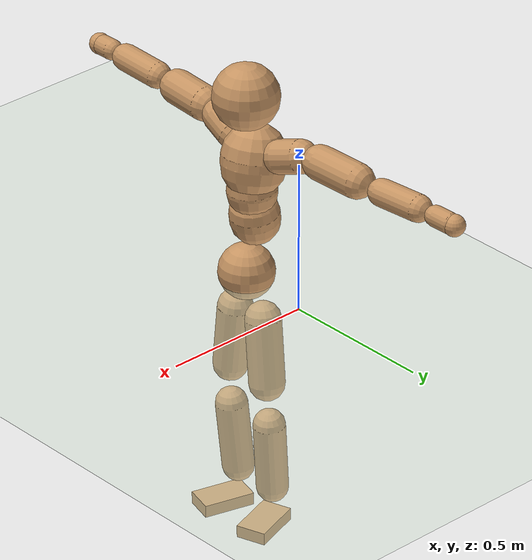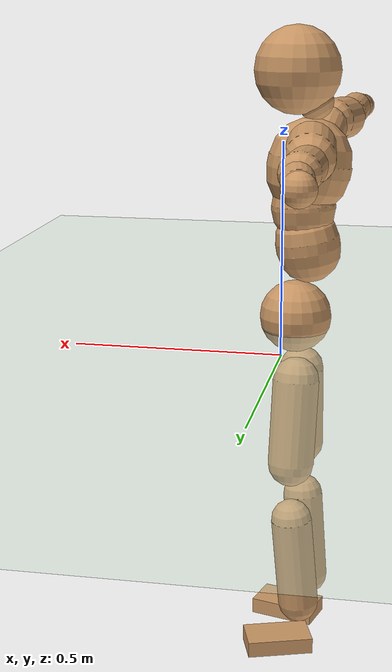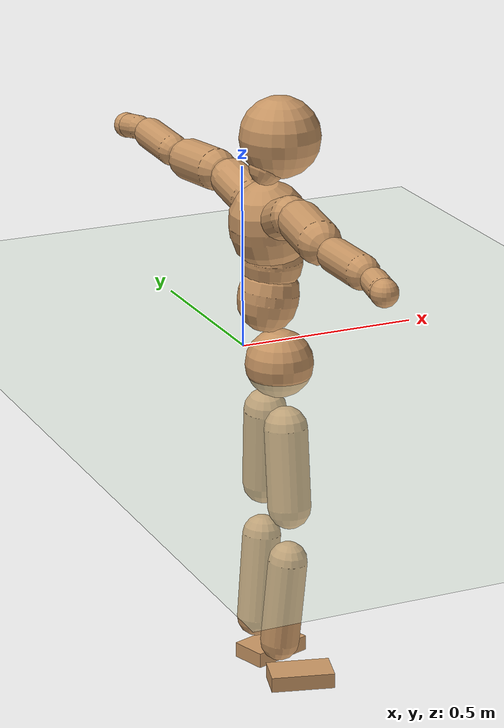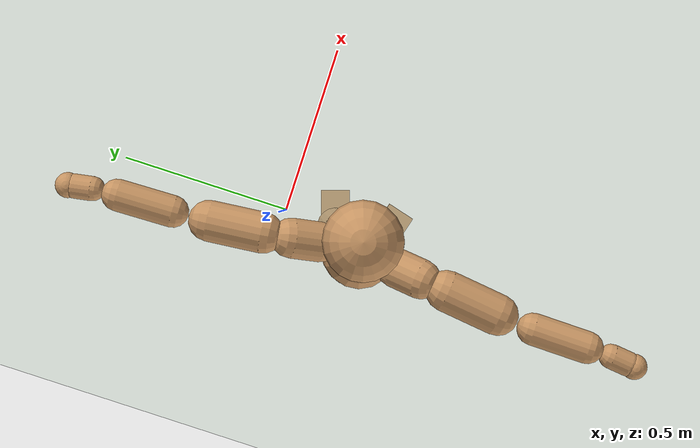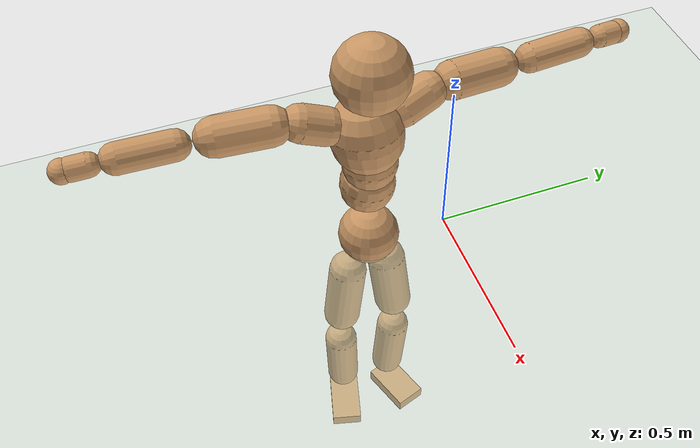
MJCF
<mujoco model="humanoid">
  <compiler coordinate="local"/>
  <default>
    <joint damping="0.0" armature="0.01" stiffness="0.0" limited="true"/>
    <geom conaffinity="1" condim="3" contype="7" margin="0.001" rgba="0.8 0.6 .4 1"/>
  </default>
  <asset>
    <texture type="skybox" builtin="gradient" rgb1=".4 .5 .6" rgb2="0 0 0" width="100" height="100"/>
    <texture builtin="flat" height="1278" mark="cross" markrgb="1 1 1" name="texgeom" random="0.01" rgb1="0.8 0.6 0.4" rgb2="0.8 0.6 0.4" type="cube" width="127"/>
    <texture builtin="checker" height="100" name="texplane" rgb1="0 0 0" rgb2="0.8 0.8 0.8" type="2d" width="100"/>
    <material name="MatPlane" reflectance="0.5" shininess="1" specular="1" texrepeat="60 60" texture="texplane"/>
    <material name="geom" texture="texgeom" texuniform="true"/>
  </asset>
  <worldbody>
    <light cutoff="100" diffuse="1 1 1" dir="-0 0 -1.3" directional="true" exponent="1" pos="0 0 1.3" specular=".1 .1 .1"/>
    <geom conaffinity="1" condim="3" name="floor" pos="0 0 0" rgba="0.8 0.9 0.8 1" size="100 100 .2" type="plane" material="MatPlane"/>
    <body name="Pelvis" pos="-0.0037 -0.2405 0.0322">
      <freejoint name="Pelvis"/>
      <geom type="sphere" contype="1" conaffinity="1" density="500" size="0.0909" pos="0.0000 0.0000 0.0000" name="Pelvis"/>
      <body name="L_Hip" pos="-0.0139 0.0542 -0.0776">
        <joint name="L_Hip_x" type="hinge" pos="0 0 0" axis="1 0 0" stiffness="800" damping="80" armature="0.02" range="-180.0000 180.0000"/>
        <joint name="L_Hip_y" type="hinge" pos="0 0 0" axis="0 1 0" stiffness="800" damping="80" armature="0.02" range="-180.0000 180.0000"/>
        <joint name="L_Hip_z" type="hinge" pos="0 0 0" axis="0 0 1" stiffness="800" damping="80" armature="0.02" range="-180.0000 180.0000"/>
        <geom type="capsule" contype="1" conaffinity="1" density="500" fromto="0.0023 0.0082 -0.0725 0.0090 0.0328 -0.2898" size="0.0582" name="L_Hip"/>
        <body name="L_Knee" pos="0.0113 0.041 -0.3623">
          <joint name="L_Knee_x" type="hinge" pos="0 0 0" axis="1 0 0" stiffness="800" damping="80" armature="0.02" range="-180.0000 180.0000"/>
          <joint name="L_Knee_y" type="hinge" pos="0 0 0" axis="0 1 0" stiffness="800" damping="80" armature="0.02" range="-180.0000 180.0000"/>
          <joint name="L_Knee_z" type="hinge" pos="0 0 0" axis="0 0 1" stiffness="800" damping="80" armature="0.02" range="-180.0000 180.0000"/>
          <geom type="capsule" contype="1" conaffinity="1" density="500" fromto="-0.0069 -0.0027 -0.0797 -0.0276 -0.0108 -0.3188" size="0.052" name="L_Knee"/>
          <body name="L_Ankle" pos="-0.0345 -0.0135 -0.3985">
            <joint name="L_Ankle_x" type="hinge" pos="0 0 0" axis="1 0 0" stiffness="800" damping="80" armature="0.02" range="-180.0000 180.0000"/>
            <joint name="L_Ankle_y" type="hinge" pos="0 0 0" axis="0 1 0" stiffness="800" damping="80" armature="0.02" range="-180.0000 180.0000"/>
            <joint name="L_Ankle_z" type="hinge" pos="0 0 0" axis="0 0 1" stiffness="800" damping="80" armature="0.02" range="-180.0000 180.0000"/>
            <geom type="box" contype="1" conaffinity="1" density="500" pos="0.0583 0.0191 -0.0284" size="0.085 0.0494 0.0206" quat="0.9875 0.0000 0.0000 0.1579" name="L_Ankle"/>
            <body name="L_Toe" pos="0.1166 0.0383 -0.0568">
              <joint name="L_Toe_x" type="hinge" pos="0 0 0" axis="1 0 0" stiffness="500" damping="50" armature="0.02" range="-180.0000 180.0000"/>
              <joint name="L_Toe_y" type="hinge" pos="0 0 0" axis="0 1 0" stiffness="500" damping="50" armature="0.02" range="-180.0000 180.0000"/>
              <joint name="L_Toe_z" type="hinge" pos="0 0 0" axis="0 0 1" stiffness="500" damping="50" armature="0.02" range="-180.0000 180.0000"/>
              <geom type="box" contype="1" conaffinity="1" density="500" pos="0.0000 0.0000 0.0280" size="0.001 0.0024 0.001" quat="0.9866 0.0000 0.0000 0.1629" name="L_Toe"/>
            </body>
          </body>
        </body>
      </body>
      <body name="R_Hip" pos="-0.0102 -0.0556 -0.0854">
        <joint name="R_Hip_x" type="hinge" pos="0 0 0" axis="1 0 0" stiffness="800" damping="80" armature="0.02" range="-180.0000 180.0000"/>
        <joint name="R_Hip_y" type="hinge" pos="0 0 0" axis="0 1 0" stiffness="800" damping="80" armature="0.02" range="-180.0000 180.0000"/>
        <joint name="R_Hip_z" type="hinge" pos="0 0 0" axis="0 0 1" stiffness="800" damping="80" armature="0.02" range="-180.0000 180.0000"/>
        <geom type="capsule" contype="1" conaffinity="1" density="500" fromto="-0.0001 -0.0078 -0.0721 -0.0004 -0.0313 -0.2883" size="0.0576" name="R_Hip"/>
        <body name="R_Knee" pos="-0.0005 -0.0392 -0.3604">
          <joint name="R_Knee_x" type="hinge" pos="0 0 0" axis="1 0 0" stiffness="800" damping="80" armature="0.02" range="-180.0000 180.0000"/>
          <joint name="R_Knee_y" type="hinge" pos="0 0 0" axis="0 1 0" stiffness="800" damping="80" armature="0.02" range="-180.0000 180.0000"/>
          <joint name="R_Knee_z" type="hinge" pos="0 0 0" axis="0 0 1" stiffness="800" damping="80" armature="0.02" range="-180.0000 180.0000"/>
          <geom type="capsule" contype="1" conaffinity="1" density="500" fromto="-0.0062 0.0035 -0.0785 -0.0248 0.0141 -0.3138" size="0.0523" name="R_Knee"/>
          <body name="R_Ankle" pos="-0.031 0.0176 -0.3923">
            <joint name="R_Ankle_x" type="hinge" pos="0 0 0" axis="1 0 0" stiffness="800" damping="80" armature="0.02" range="-180.0000 180.0000"/>
            <joint name="R_Ankle_y" type="hinge" pos="0 0 0" axis="0 1 0" stiffness="800" damping="80" armature="0.02" range="-180.0000 180.0000"/>
            <joint name="R_Ankle_z" type="hinge" pos="0 0 0" axis="0 0 1" stiffness="800" damping="80" armature="0.02" range="-180.0000 180.0000"/>
            <geom type="box" contype="1" conaffinity="1" density="500" pos="0.0614 -0.0166 -0.0298" size="0.0856 0.0488 0.0208" quat="0.9913 0.0000 0.0000 -0.1318" name="R_Ankle"/>
            <body name="R_Toe" pos="0.1228 -0.0333 -0.0596">
              <joint name="R_Toe_x" type="hinge" pos="0 0 0" axis="1 0 0" stiffness="500" damping="50" armature="0.02" range="-180.0000 180.0000"/>
              <joint name="R_Toe_y" type="hinge" pos="0 0 0" axis="0 1 0" stiffness="500" damping="50" armature="0.02" range="-180.0000 180.0000"/>
              <joint name="R_Toe_z" type="hinge" pos="0 0 0" axis="0 0 1" stiffness="500" damping="50" armature="0.02" range="-180.0000 180.0000"/>
              <geom type="box" contype="1" conaffinity="1" density="500" pos="0.0000 0.0000 0.0299" size="0.001 0.0024 0.001" quat="0.9925 0.0000 0.0000 -0.1223" name="R_Toe"/>
            </body>
          </body>
        </body>
      </body>
      <body name="Torso" pos="-0.0401 0.0042 0.118">
        <joint name="Torso_x" type="hinge" pos="0 0 0" axis="1 0 0" stiffness="1000" damping="100" armature="0.02" range="-180.0000 180.0000"/>
        <joint name="Torso_y" type="hinge" pos="0 0 0" axis="0 1 0" stiffness="1000" damping="100" armature="0.02" range="-180.0000 180.0000"/>
        <joint name="Torso_z" type="hinge" pos="0 0 0" axis="0 0 1" stiffness="1000" damping="100" armature="0.02" range="-180.0000 180.0000"/>
        <geom type="capsule" contype="1" conaffinity="1" density="500" fromto="0.0139 0.0030 0.0811 0.0092 0.0020 0.0541" size="0.0801" name="Torso"/>
        <body name="Spine" pos="0.0231 0.005 0.1352">
          <joint name="Spine_x" type="hinge" pos="0 0 0" axis="1 0 0" stiffness="1000" damping="100" armature="0.02" range="-180.0000 180.0000"/>
          <joint name="Spine_y" type="hinge" pos="0 0 0" axis="0 1 0" stiffness="1000" damping="100" armature="0.02" range="-180.0000 180.0000"/>
          <joint name="Spine_z" type="hinge" pos="0 0 0" axis="0 0 1" stiffness="1000" damping="100" armature="0.02" range="-180.0000 180.0000"/>
          <geom type="capsule" contype="1" conaffinity="1" density="500" fromto="0.0012 -0.0008 0.0328 0.0008 -0.0005 0.0219" size="0.08" name="Spine"/>
          <body name="Chest" pos="0.002 -0.0013 0.0546">
            <joint name="Chest_x" type="hinge" pos="0 0 0" axis="1 0 0" stiffness="1000" damping="100" armature="0.02" range="-180.0000 180.0000"/>
            <joint name="Chest_y" type="hinge" pos="0 0 0" axis="0 1 0" stiffness="1000" damping="100" armature="0.02" range="-180.0000 180.0000"/>
            <joint name="Chest_z" type="hinge" pos="0 0 0" axis="0 0 1" stiffness="1000" damping="100" armature="0.02" range="-180.0000 180.0000"/>
            <geom type="capsule" contype="1" conaffinity="1" density="500" fromto="-0.0152 -0.0054 0.0860 -0.0101 -0.0036 0.0573" size="0.1038" name="Chest"/>
            <body name="Neck" pos="-0.0331 -0.0142 0.2097">
              <joint name="Neck_x" type="hinge" pos="0 0 0" axis="1 0 0" stiffness="500" damping="50" armature="0.02" range="-180.0000 180.0000"/>
              <joint name="Neck_y" type="hinge" pos="0 0 0" axis="0 1 0" stiffness="500" damping="50" armature="0.02" range="-180.0000 180.0000"/>
              <joint name="Neck_z" type="hinge" pos="0 0 0" axis="0 0 1" stiffness="500" damping="50" armature="0.02" range="-180.0000 180.0000"/>
              <geom type="capsule" contype="1" conaffinity="1" density="500" fromto="0.0104 0.0022 0.0182 0.0417 0.0088 0.0730" size="0.0463" name="Neck"/>
              <body name="Head" pos="0.0522 0.011 0.0912">
                <joint name="Head_x" type="hinge" pos="0 0 0" axis="1 0 0" stiffness="500" damping="50" armature="0.02" range="-180.0000 180.0000"/>
                <joint name="Head_y" type="hinge" pos="0 0 0" axis="0 1 0" stiffness="500" damping="50" armature="0.02" range="-180.0000 180.0000"/>
                <joint name="Head_z" type="hinge" pos="0 0 0" axis="0 0 1" stiffness="500" damping="50" armature="0.02" range="-180.0000 180.0000"/>
                <geom type="sphere" contype="1" conaffinity="1" density="500" size="0.1063" pos="0.0000 0.0000 0.0000" name="Head"/>
              </body>
            </body>
            <body name="L_Thorax" pos="-0.0186 0.0754 0.111">
              <joint name="L_Thorax_x" type="hinge" pos="0 0 0" axis="1 0 0" stiffness="500" damping="50" armature="0.02" range="-180.0000 180.0000"/>
              <joint name="L_Thorax_y" type="hinge" pos="0 0 0" axis="0 1 0" stiffness="500" damping="50" armature="0.02" range="-180.0000 180.0000"/>
              <joint name="L_Thorax_z" type="hinge" pos="0 0 0" axis="0 0 1" stiffness="500" damping="50" armature="0.02" range="-180.0000 180.0000"/>
              <geom type="capsule" contype="1" conaffinity="1" density="500" fromto="-0.0045 0.0260 0.0092 -0.0178 0.1041 0.0367" size="0.0542" name="L_Thorax"/>
              <body name="L_Shoulder" pos="-0.0223 0.1302 0.0458">
                <joint name="L_Shoulder_x" type="hinge" pos="0 0 0" axis="1 0 0" stiffness="500" damping="50" armature="0.02" range="-720.0000 720.0000"/>
                <joint name="L_Shoulder_y" type="hinge" pos="0 0 0" axis="0 1 0" stiffness="500" damping="50" armature="0.02" range="-720.0000 720.0000"/>
                <joint name="L_Shoulder_z" type="hinge" pos="0 0 0" axis="0 0 1" stiffness="500" damping="50" armature="0.02" range="-720.0000 720.0000"/>
                <geom type="capsule" contype="1" conaffinity="1" density="500" fromto="-0.0048 0.0488 -0.0028 -0.0193 0.1951 -0.0114" size="0.0558" name="L_Shoulder"/>
                <body name="L_Elbow" pos="-0.0241 0.2438 -0.0142">
                  <joint name="L_Elbow_x" type="hinge" pos="0 0 0" axis="1 0 0" stiffness="500" damping="50" armature="0.02" range="-720.0000 720.0000"/>
                  <joint name="L_Elbow_y" type="hinge" pos="0 0 0" axis="0 1 0" stiffness="500" damping="50" armature="0.02" range="-720.0000 720.0000"/>
                  <joint name="L_Elbow_z" type="hinge" pos="0 0 0" axis="0 0 1" stiffness="500" damping="50" armature="0.02" range="-720.0000 720.0000"/>
                  <geom type="capsule" contype="1" conaffinity="1" density="500" fromto="-0.0012 0.0509 0.0026 -0.0048 0.2035 0.0105" size="0.0432" name="L_Elbow"/>
                  <body name="L_Wrist" pos="-0.006 0.2544 0.0131">
                    <joint name="L_Wrist_x" type="hinge" pos="0 0 0" axis="1 0 0" stiffness="300" damping="30" armature="0.02" range="-180.0000 180.0000"/>
                    <joint name="L_Wrist_y" type="hinge" pos="0 0 0" axis="0 1 0" stiffness="300" damping="30" armature="0.02" range="-180.0000 180.0000"/>
                    <joint name="L_Wrist_z" type="hinge" pos="0 0 0" axis="0 0 1" stiffness="300" damping="30" armature="0.02" range="-180.0000 180.0000"/>
                    <geom type="capsule" contype="1" conaffinity="1" density="500" fromto="-0.0029 0.0168 -0.0021 -0.0117 0.0670 -0.0083" size="0.0333" name="L_Wrist"/>
                    <body name="L_Hand" pos="-0.0147 0.0838 -0.0104">
                      <joint name="L_Hand_x" type="hinge" pos="0 0 0" axis="1 0 0" stiffness="300" damping="30" armature="0.02" range="-180.0000 180.0000"/>
                      <joint name="L_Hand_y" type="hinge" pos="0 0 0" axis="0 1 0" stiffness="300" damping="30" armature="0.02" range="-180.0000 180.0000"/>
                      <joint name="L_Hand_z" type="hinge" pos="0 0 0" axis="0 0 1" stiffness="300" damping="30" armature="0.02" range="-180.0000 180.0000"/>
                      <geom type="sphere" contype="1" conaffinity="1" density="500" size="0.0345" pos="0.0000 0.0000 0.0000" name="L_Hand"/>
                    </body>
                  </body>
                </body>
              </body>
            </body>
            <body name="R_Thorax" pos="-0.0244 -0.088 0.1093">
              <joint name="R_Thorax_x" type="hinge" pos="0 0 0" axis="1 0 0" stiffness="500" damping="50" armature="0.02" range="-180.0000 180.0000"/>
              <joint name="R_Thorax_y" type="hinge" pos="0 0 0" axis="0 1 0" stiffness="500" damping="50" armature="0.02" range="-180.0000 180.0000"/>
              <joint name="R_Thorax_z" type="hinge" pos="0 0 0" axis="0 0 1" stiffness="500" damping="50" armature="0.02" range="-180.0000 180.0000"/>
              <geom type="capsule" contype="1" conaffinity="1" density="500" fromto="-0.0023 -0.0237 0.0095 -0.0093 -0.0949 0.0378" size="0.0539" name="R_Thorax"/>
              <body name="R_Shoulder" pos="-0.0116 -0.1186 0.0473">
                <joint name="R_Shoulder_x" type="hinge" pos="0 0 0" axis="1 0 0" stiffness="500" damping="50" armature="0.02" range="-720.0000 720.0000"/>
                <joint name="R_Shoulder_y" type="hinge" pos="0 0 0" axis="0 1 0" stiffness="500" damping="50" armature="0.02" range="-720.0000 720.0000"/>
                <joint name="R_Shoulder_z" type="hinge" pos="0 0 0" axis="0 0 1" stiffness="500" damping="50" armature="0.02" range="-720.0000 720.0000"/>
                <geom type="capsule" contype="1" conaffinity="1" density="500" fromto="-0.0063 -0.0499 -0.0021 -0.0250 -0.1997 -0.0086" size="0.0561" name="R_Shoulder"/>
                <body name="R_Elbow" pos="-0.0313 -0.2496 -0.0107">
                  <joint name="R_Elbow_x" type="hinge" pos="0 0 0" axis="1 0 0" stiffness="500" damping="50" armature="0.02" range="-720.0000 720.0000"/>
                  <joint name="R_Elbow_y" type="hinge" pos="0 0 0" axis="0 1 0" stiffness="500" damping="50" armature="0.02" range="-720.0000 720.0000"/>
                  <joint name="R_Elbow_z" type="hinge" pos="0 0 0" axis="0 0 1" stiffness="500" damping="50" armature="0.02" range="-720.0000 720.0000"/>
                  <geom type="capsule" contype="1" conaffinity="1" density="500" fromto="-0.0007 -0.0509 0.0010 -0.0029 -0.2036 0.0039" size="0.0435" name="R_Elbow"/>
                  <body name="R_Wrist" pos="-0.0036 -0.2545 0.0049">
                    <joint name="R_Wrist_x" type="hinge" pos="0 0 0" axis="1 0 0" stiffness="300" damping="30" armature="0.02" range="-180.0000 180.0000"/>
                    <joint name="R_Wrist_y" type="hinge" pos="0 0 0" axis="0 1 0" stiffness="300" damping="30" armature="0.02" range="-180.0000 180.0000"/>
                    <joint name="R_Wrist_z" type="hinge" pos="0 0 0" axis="0 0 1" stiffness="300" damping="30" armature="0.02" range="-180.0000 180.0000"/>
                    <geom type="capsule" contype="1" conaffinity="1" density="500" fromto="-0.0019 -0.0170 -0.0017 -0.0077 -0.0680 -0.0067" size="0.0336" name="R_Wrist"/>
                    <body name="R_Hand" pos="-0.0097 -0.085 -0.0084">
                      <joint name="R_Hand_x" type="hinge" pos="0 0 0" axis="1 0 0" stiffness="300" damping="30" armature="0.02" range="-180.0000 180.0000"/>
                      <joint name="R_Hand_y" type="hinge" pos="0 0 0" axis="0 1 0" stiffness="300" damping="30" armature="0.02" range="-180.0000 180.0000"/>
                      <joint name="R_Hand_z" type="hinge" pos="0 0 0" axis="0 0 1" stiffness="300" damping="30" armature="0.02" range="-180.0000 180.0000"/>
                      <geom type="sphere" contype="1" conaffinity="1" density="500" size="0.0347" pos="0.0000 0.0000 0.0000" name="R_Hand"/>
                    </body>
                  </body>
                </body>
              </body>
            </body>
          </body>
        </body>
      </body>
    </body>
  </worldbody>
  <actuator>
    <motor name="L_Hip_x" joint="L_Hip_x" gear="500"/>
    <motor name="L_Hip_y" joint="L_Hip_y" gear="500"/>
    <motor name="L_Hip_z" joint="L_Hip_z" gear="500"/>
    <motor name="L_Knee_x" joint="L_Knee_x" gear="500"/>
    <motor name="L_Knee_y" joint="L_Knee_y" gear="500"/>
    <motor name="L_Knee_z" joint="L_Knee_z" gear="500"/>
    <motor name="L_Ankle_x" joint="L_Ankle_x" gear="500"/>
    <motor name="L_Ankle_y" joint="L_Ankle_y" gear="500"/>
    <motor name="L_Ankle_z" joint="L_Ankle_z" gear="500"/>
    <motor name="L_Toe_x" joint="L_Toe_x" gear="500"/>
    <motor name="L_Toe_y" joint="L_Toe_y" gear="500"/>
    <motor name="L_Toe_z" joint="L_Toe_z" gear="500"/>
    <motor name="R_Hip_x" joint="R_Hip_x" gear="500"/>
    <motor name="R_Hip_y" joint="R_Hip_y" gear="500"/>
    <motor name="R_Hip_z" joint="R_Hip_z" gear="500"/>
    <motor name="R_Knee_x" joint="R_Knee_x" gear="500"/>
    <motor name="R_Knee_y" joint="R_Knee_y" gear="500"/>
    <motor name="R_Knee_z" joint="R_Knee_z" gear="500"/>
    <motor name="R_Ankle_x" joint="R_Ankle_x" gear="500"/>
    <motor name="R_Ankle_y" joint="R_Ankle_y" gear="500"/>
    <motor name="R_Ankle_z" joint="R_Ankle_z" gear="500"/>
    <motor name="R_Toe_x" joint="R_Toe_x" gear="500"/>
    <motor name="R_Toe_y" joint="R_Toe_y" gear="500"/>
    <motor name="R_Toe_z" joint="R_Toe_z" gear="500"/>
    <motor name="Torso_x" joint="Torso_x" gear="500"/>
    <motor name="Torso_y" joint="Torso_y" gear="500"/>
    <motor name="Torso_z" joint="Torso_z" gear="500"/>
    <motor name="Spine_x" joint="Spine_x" gear="500"/>
    <motor name="Spine_y" joint="Spine_y" gear="500"/>
    <motor name="Spine_z" joint="Spine_z" gear="500"/>
    <motor name="Chest_x" joint="Chest_x" gear="500"/>
    <motor name="Chest_y" joint="Chest_y" gear="500"/>
    <motor name="Chest_z" joint="Chest_z" gear="500"/>
    <motor name="Neck_x" joint="Neck_x" gear="500"/>
    <motor name="Neck_y" joint="Neck_y" gear="500"/>
    <motor name="Neck_z" joint="Neck_z" gear="500"/>
    <motor name="Head_x" joint="Head_x" gear="500"/>
    <motor name="Head_y" joint="Head_y" gear="500"/>
    <motor name="Head_z" joint="Head_z" gear="500"/>
    <motor name="L_Thorax_x" joint="L_Thorax_x" gear="500"/>
    <motor name="L_Thorax_y" joint="L_Thorax_y" gear="500"/>
    <motor name="L_Thorax_z" joint="L_Thorax_z" gear="500"/>
    <motor name="L_Shoulder_x" joint="L_Shoulder_x" gear="500"/>
    <motor name="L_Shoulder_y" joint="L_Shoulder_y" gear="500"/>
    <motor name="L_Shoulder_z" joint="L_Shoulder_z" gear="500"/>
    <motor name="L_Elbow_x" joint="L_Elbow_x" gear="500"/>
    <motor name="L_Elbow_y" joint="L_Elbow_y" gear="500"/>
    <motor name="L_Elbow_z" joint="L_Elbow_z" gear="500"/>
    <motor name="L_Wrist_x" joint="L_Wrist_x" gear="500"/>
    <motor name="L_Wrist_y" joint="L_Wrist_y" gear="500"/>
    <motor name="L_Wrist_z" joint="L_Wrist_z" gear="500"/>
    <motor name="L_Hand_x" joint="L_Hand_x" gear="500"/>
    <motor name="L_Hand_y" joint="L_Hand_y" gear="500"/>
    <motor name="L_Hand_z" joint="L_Hand_z" gear="500"/>
    <motor name="R_Thorax_x" joint="R_Thorax_x" gear="500"/>
    <motor name="R_Thorax_y" joint="R_Thorax_y" gear="500"/>
    <motor name="R_Thorax_z" joint="R_Thorax_z" gear="500"/>
    <motor name="R_Shoulder_x" joint="R_Shoulder_x" gear="500"/>
    <motor name="R_Shoulder_y" joint="R_Shoulder_y" gear="500"/>
    <motor name="R_Shoulder_z" joint="R_Shoulder_z" gear="500"/>
    <motor name="R_Elbow_x" joint="R_Elbow_x" gear="500"/>
    <motor name="R_Elbow_y" joint="R_Elbow_y" gear="500"/>
    <motor name="R_Elbow_z" joint="R_Elbow_z" gear="500"/>
    <motor name="R_Wrist_x" joint="R_Wrist_x" gear="500"/>
    <motor name="R_Wrist_y" joint="R_Wrist_y" gear="500"/>
    <motor name="R_Wrist_z" joint="R_Wrist_z" gear="500"/>
    <motor name="R_Hand_x" joint="R_Hand_x" gear="500"/>
    <motor name="R_Hand_y" joint="R_Hand_y" gear="500"/>
    <motor name="R_Hand_z" joint="R_Hand_z" gear="500"/>
  </actuator>
  <contact>
    <exclude body1="Torso" body2="Chest"/>
    <exclude body1="Head" body2="Chest"/>
    <exclude body1="R_Knee" body2="R_Toe"/>
    <exclude body1="R_Knee" body2="L_Ankle"/>
    <exclude body1="R_Knee" body2="L_Toe"/>
    <exclude body1="L_Knee" body2="L_Toe"/>
    <exclude body1="L_Knee" body2="R_Ankle"/>
    <exclude body1="L_Knee" body2="R_Toe"/>
    <exclude body1="L_Shoulder" body2="Chest"/>
    <exclude body1="R_Shoulder" body2="Chest"/>
  </contact>
  <sensor/>
  <size njmax="700" nconmax="700"/>
</mujoco>
